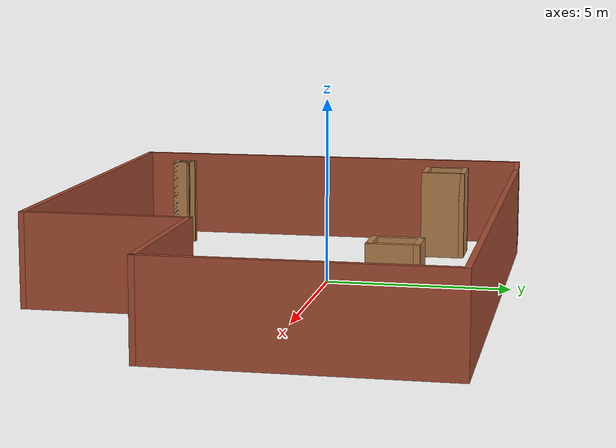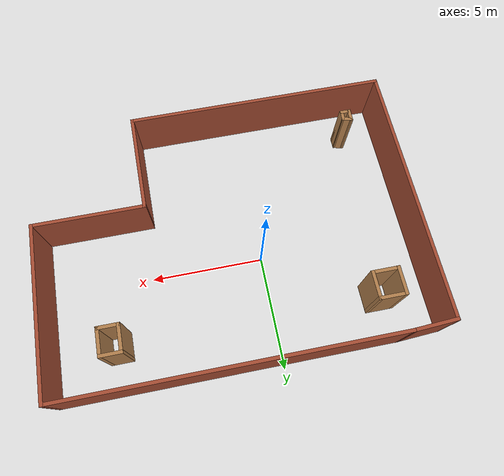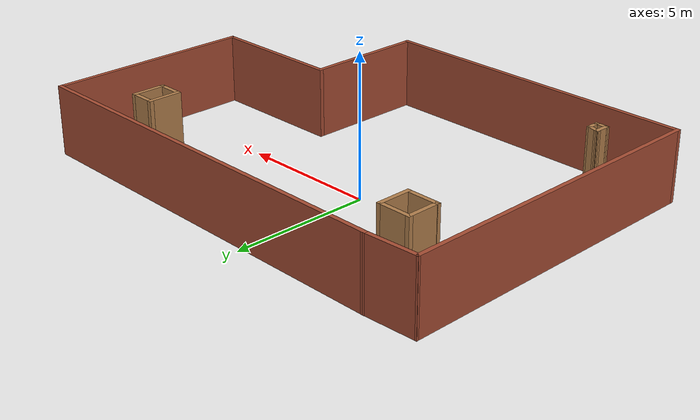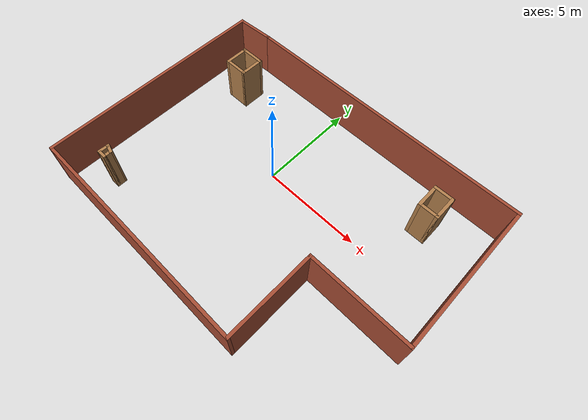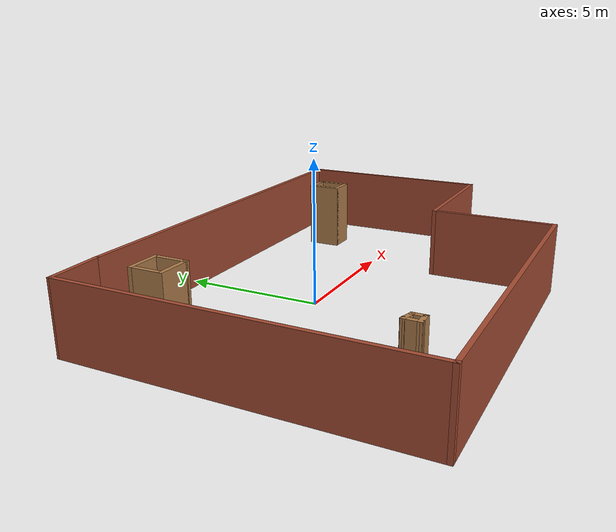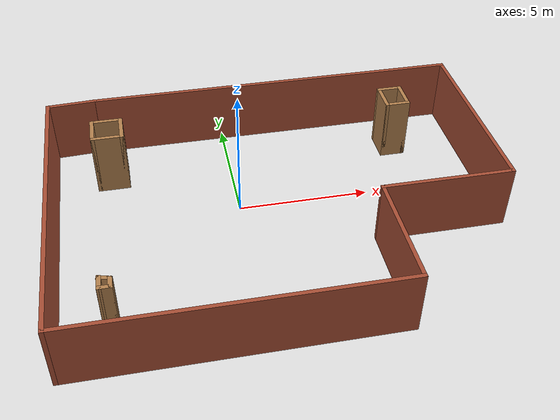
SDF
<?xml version='1.0'?>
<sdf version='1.6'>
  <model name='tutorial_world'>
    <pose frame=''>1.29947 -1.10865 0 0 -0 0</pose>
    <link name='Wall_1'>
      <collision name='Wall_1_Collision'>
        <geometry>
          <box>
            <size>14.75 0.15 2.5</size>
          </box>
        </geometry>
        <pose frame=''>0 0 1.25 0 -0 0</pose>
      </collision>
      <visual name='Wall_1_Visual'>
        <pose frame=''>0 0 1.25 0 -0 0</pose>
        <geometry>
          <box>
            <size>14.75 0.15 2.5</size>
          </box>
        </geometry>
        <material>
          <script>
            <uri>file://media/materials/scripts/gazebo.material</uri>
            <name>Gazebo/Bricks</name>
          </script>
          <ambient>1 1 1 1</ambient>
        </material>
        <meta>
          <layer>0</layer>
        </meta>
      </visual>
      <pose frame=''>0.926969 5.84803 0 0 -0 0</pose>
    </link>
    <link name='Wall_11'>
      <collision name='Wall_11_Collision'>
        <geometry>
          <box>
            <size>0.5 0.15 2.5</size>
          </box>
        </geometry>
        <pose frame=''>0 0 1.25 0 -0 0</pose>
      </collision>
      <visual name='Wall_11_Visual'>
        <pose frame=''>0 0 1.25 0 -0 0</pose>
        <geometry>
          <box>
            <size>0.5 0.15 2.5</size>
          </box>
        </geometry>
        <material>
          <script>
            <uri>file://media/materials/scripts/gazebo.material</uri>
            <name>Gazebo/Wood</name>
          </script>
          <ambient>1 1 1 1</ambient>
        </material>
        <meta>
          <layer>0</layer>
        </meta>
      </visual>
      <pose frame=''>-6.37272 -4.46114 0 0 -0 0</pose>
    </link>
    <link name='Wall_12'>
      <collision name='Wall_12_Collision'>
        <geometry>
          <box>
            <size>0.5 0.15 2.5</size>
          </box>
        </geometry>
        <pose frame=''>0 0 1.25 0 -0 0</pose>
      </collision>
      <visual name='Wall_12_Visual'>
        <pose frame=''>0 0 1.25 0 -0 0</pose>
        <geometry>
          <box>
            <size>0.5 0.15 2.5</size>
          </box>
        </geometry>
        <material>
          <script>
            <uri>file://media/materials/scripts/gazebo.material</uri>
            <name>Gazebo/Wood</name>
          </script>
          <ambient>1 1 1 1</ambient>
        </material>
        <meta>
          <layer>0</layer>
        </meta>
      </visual>
      <pose frame=''>-6.19772 -4.28614 0 0 -0 1.5708</pose>
    </link>
    <link name='Wall_13'>
      <collision name='Wall_13_Collision'>
        <geometry>
          <box>
            <size>0.5 0.15 2.5</size>
          </box>
        </geometry>
        <pose frame=''>0 0 1.25 0 -0 0</pose>
      </collision>
      <visual name='Wall_13_Visual'>
        <pose frame=''>0 0 1.25 0 -0 0</pose>
        <geometry>
          <box>
            <size>0.5 0.15 2.5</size>
          </box>
        </geometry>
        <material>
          <script>
            <uri>file://media/materials/scripts/gazebo.material</uri>
            <name>Gazebo/Wood</name>
          </script>
          <ambient>1 1 1 1</ambient>
        </material>
        <meta>
          <layer>0</layer>
        </meta>
      </visual>
      <pose frame=''>-6.36676 -4.06585 0 0 -0 2.87979</pose>
    </link>
    <link name='Wall_14'>
      <collision name='Wall_14_Collision'>
        <geometry>
          <box>
            <size>0.590748 0.15 2.5</size>
          </box>
        </geometry>
        <pose frame=''>0 0 1.25 0 -0 0</pose>
      </collision>
      <visual name='Wall_14_Visual'>
        <pose frame=''>0 0 1.25 0 -0 0</pose>
        <geometry>
          <box>
            <size>0.590748 0.15 2.5</size>
          </box>
        </geometry>
        <material>
          <script>
            <uri>file://media/materials/scripts/gazebo.material</uri>
            <name>Gazebo/Wood</name>
          </script>
          <ambient>1 1 1 1</ambient>
        </material>
        <meta>
          <layer>0</layer>
        </meta>
      </visual>
      <pose frame=''>-6.54176 -4.24085 0 0 -0 -1.59786</pose>
    </link>
    <link name='Wall_16'>
      <collision name='Wall_16_Collision'>
        <geometry>
          <box>
            <size>1.25 0.15 2.5</size>
          </box>
        </geometry>
        <pose frame=''>0 0 1.25 0 -0 0</pose>
      </collision>
      <visual name='Wall_16_Visual'>
        <pose frame=''>0 0 1.25 0 -0 0</pose>
        <geometry>
          <box>
            <size>1.25 0.15 2.5</size>
          </box>
        </geometry>
        <material>
          <script>
            <uri>file://media/materials/scripts/gazebo.material</uri>
            <name>Gazebo/Wood</name>
          </script>
          <ambient>1 1 1 1</ambient>
        </material>
        <meta>
          <layer>0</layer>
        </meta>
      </visual>
      <pose frame=''>-6.54772 3.79885 0 0 -0 -1.5708</pose>
    </link>
    <link name='Wall_17'>
      <collision name='Wall_17_Collision'>
        <geometry>
          <box>
            <size>1.25 0.15 2.5</size>
          </box>
        </geometry>
        <pose frame=''>0 0 1.25 0 -0 0</pose>
      </collision>
      <visual name='Wall_17_Visual'>
        <pose frame=''>0 0 1.25 0 -0 0</pose>
        <geometry>
          <box>
            <size>1.25 0.15 2.5</size>
          </box>
        </geometry>
        <material>
          <script>
            <uri>file://media/materials/scripts/gazebo.material</uri>
            <name>Gazebo/Wood</name>
          </script>
          <ambient>1 1 1 1</ambient>
        </material>
        <meta>
          <layer>0</layer>
        </meta>
      </visual>
      <pose frame=''>-5.99772 3.24885 0 0 -0 0</pose>
    </link>
    <link name='Wall_18'>
      <collision name='Wall_18_Collision'>
        <geometry>
          <box>
            <size>1.25 0.15 2.5</size>
          </box>
        </geometry>
        <pose frame=''>0 0 1.25 0 -0 0</pose>
      </collision>
      <visual name='Wall_18_Visual'>
        <pose frame=''>0 0 1.25 0 -0 0</pose>
        <geometry>
          <box>
            <size>1.25 0.15 2.5</size>
          </box>
        </geometry>
        <material>
          <script>
            <uri>file://media/materials/scripts/gazebo.material</uri>
            <name>Gazebo/Wood</name>
          </script>
          <ambient>1 1 1 1</ambient>
        </material>
        <meta>
          <layer>0</layer>
        </meta>
      </visual>
      <pose frame=''>-5.44772 3.79885 0 0 -0 1.5708</pose>
    </link>
    <link name='Wall_19'>
      <collision name='Wall_19_Collision'>
        <geometry>
          <box>
            <size>1.25 0.15 2.5</size>
          </box>
        </geometry>
        <pose frame=''>0 0 1.25 0 -0 0</pose>
      </collision>
      <visual name='Wall_19_Visual'>
        <pose frame=''>0 0 1.25 0 -0 0</pose>
        <geometry>
          <box>
            <size>1.25 0.15 2.5</size>
          </box>
        </geometry>
        <material>
          <script>
            <uri>file://media/materials/scripts/gazebo.material</uri>
            <name>Gazebo/Wood</name>
          </script>
          <ambient>1 1 1 1</ambient>
        </material>
        <meta>
          <layer>0</layer>
        </meta>
      </visual>
      <pose frame=''>-5.99772 4.34884 0 0 -0 3.14159</pose>
    </link>
    <link name='Wall_2'>
      <collision name='Wall_2_Collision'>
        <geometry>
          <box>
            <size>7.5 0.15 2.5</size>
          </box>
        </geometry>
        <pose frame=''>0 0 1.25 0 -0 0</pose>
      </collision>
      <visual name='Wall_2_Visual'>
        <pose frame=''>0 0 1.25 0 -0 0</pose>
        <geometry>
          <box>
            <size>7.5 0.15 2.5</size>
          </box>
        </geometry>
        <material>
          <script>
            <uri>file://media/materials/scripts/gazebo.material</uri>
            <name>Gazebo/Bricks</name>
          </script>
          <ambient>1 1 1 1</ambient>
        </material>
        <meta>
          <layer>0</layer>
        </meta>
      </visual>
      <pose frame=''>8.22697 2.17303 0 0 -0 -1.5708</pose>
    </link>
    <link name='Wall_21'>
      <collision name='Wall_21_Collision'>
        <geometry>
          <box>
            <size>1.25 0.15 2.5</size>
          </box>
        </geometry>
        <pose frame=''>0 0 1.25 0 -0 0</pose>
      </collision>
      <visual name='Wall_21_Visual'>
        <pose frame=''>0 0 1.25 0 -0 0</pose>
        <geometry>
          <box>
            <size>1.25 0.15 2.5</size>
          </box>
        </geometry>
        <material>
          <script>
            <uri>file://media/materials/scripts/gazebo.material</uri>
            <name>Gazebo/Wood</name>
          </script>
          <ambient>1 1 1 1</ambient>
        </material>
        <meta>
          <layer>0</layer>
        </meta>
      </visual>
      <pose frame=''>5.05323 3.92094 0 0 -0 -1.5708</pose>
    </link>
    <link name='Wall_22'>
      <collision name='Wall_22_Collision'>
        <geometry>
          <box>
            <size>1 0.15 2.5</size>
          </box>
        </geometry>
        <pose frame=''>0 0 1.25 0 -0 0</pose>
      </collision>
      <visual name='Wall_22_Visual'>
        <pose frame=''>0 0 1.25 0 -0 0</pose>
        <geometry>
          <box>
            <size>1 0.15 2.5</size>
          </box>
        </geometry>
        <material>
          <script>
            <uri>file://media/materials/scripts/gazebo.material</uri>
            <name>Gazebo/Wood</name>
          </script>
          <ambient>1 1 1 1</ambient>
        </material>
        <meta>
          <layer>0</layer>
        </meta>
      </visual>
      <pose frame=''>5.47823 3.37094 0 0 -0 0</pose>
    </link>
    <link name='Wall_23'>
      <collision name='Wall_23_Collision'>
        <geometry>
          <box>
            <size>1.25 0.15 2.5</size>
          </box>
        </geometry>
        <pose frame=''>0 0 1.25 0 -0 0</pose>
      </collision>
      <visual name='Wall_23_Visual'>
        <pose frame=''>0 0 1.25 0 -0 0</pose>
        <geometry>
          <box>
            <size>1.25 0.15 2.5</size>
          </box>
        </geometry>
        <material>
          <script>
            <uri>file://media/materials/scripts/gazebo.material</uri>
            <name>Gazebo/Wood</name>
          </script>
          <ambient>1 1 1 1</ambient>
        </material>
        <meta>
          <layer>0</layer>
        </meta>
      </visual>
      <pose frame=''>5.90323 3.92094 0 0 -0 1.5708</pose>
    </link>
    <link name='Wall_24'>
      <collision name='Wall_24_Collision'>
        <geometry>
          <box>
            <size>1 0.15 2.5</size>
          </box>
        </geometry>
        <pose frame=''>0 0 1.25 0 -0 0</pose>
      </collision>
      <visual name='Wall_24_Visual'>
        <pose frame=''>0 0 1.25 0 -0 0</pose>
        <geometry>
          <box>
            <size>1 0.15 2.5</size>
          </box>
        </geometry>
        <material>
          <script>
            <uri>file://media/materials/scripts/gazebo.material</uri>
            <name>Gazebo/Wood</name>
          </script>
          <ambient>1 1 1 1</ambient>
        </material>
        <meta>
          <layer>0</layer>
        </meta>
      </visual>
      <pose frame=''>5.47823 4.47094 0 0 -0 3.14159</pose>
    </link>
    <link name='Wall_4'>
      <collision name='Wall_4_Collision'>
        <geometry>
          <box>
            <size>5 0.15 2.5</size>
          </box>
        </geometry>
        <pose frame=''>0 0 1.25 0 -0 0</pose>
      </collision>
      <visual name='Wall_4_Visual'>
        <pose frame=''>0 0 1.25 0 -0 0</pose>
        <geometry>
          <box>
            <size>5 0.15 2.5</size>
          </box>
        </geometry>
        <material>
          <script>
            <uri>file://media/materials/scripts/gazebo.material</uri>
            <name>Gazebo/Bricks</name>
          </script>
          <ambient>1 1 1 1</ambient>
        </material>
        <meta>
          <layer>0</layer>
        </meta>
      </visual>
      <pose frame=''>5.80197 -1.50197 0 0 -0 3.14159</pose>
    </link>
    <link name='Wall_5'>
      <collision name='Wall_5_Collision'>
        <geometry>
          <box>
            <size>4.5 0.15 2.5</size>
          </box>
        </geometry>
        <pose frame=''>0 0 1.25 0 -0 0</pose>
      </collision>
      <visual name='Wall_5_Visual'>
        <pose frame=''>0 0 1.25 0 -0 0</pose>
        <geometry>
          <box>
            <size>4.5 0.15 2.5</size>
          </box>
        </geometry>
        <material>
          <script>
            <uri>file://media/materials/scripts/gazebo.material</uri>
            <name>Gazebo/Bricks</name>
          </script>
          <ambient>1 1 1 1</ambient>
        </material>
        <meta>
          <layer>0</layer>
        </meta>
      </visual>
      <pose frame=''>3.37697 -3.67697 0 0 -0 -1.5708</pose>
    </link>
    <link name='Wall_6'>
      <collision name='Wall_6_Collision'>
        <geometry>
          <box>
            <size>11.75 0.15 2.5</size>
          </box>
        </geometry>
        <pose frame=''>0 0 1.25 0 -0 0</pose>
      </collision>
      <visual name='Wall_6_Visual'>
        <pose frame=''>0 0 1.25 0 -0 0</pose>
        <geometry>
          <box>
            <size>11.75 0.15 2.5</size>
          </box>
        </geometry>
        <material>
          <script>
            <uri>file://media/materials/scripts/gazebo.material</uri>
            <name>Gazebo/Bricks</name>
          </script>
          <ambient>1 1 1 1</ambient>
        </material>
        <meta>
          <layer>0</layer>
        </meta>
      </visual>
      <pose frame=''>-2.42303 -5.85197 0 0 -0 3.14159</pose>
    </link>
    <link name='Wall_8'>
      <collision name='Wall_8_Collision'>
        <geometry>
          <box>
            <size>11.75 0.15 2.5</size>
          </box>
        </geometry>
        <pose frame=''>0 0 1.25 0 -0 0</pose>
      </collision>
      <visual name='Wall_8_Visual'>
        <pose frame=''>0 0 1.25 0 -0 0</pose>
        <geometry>
          <box>
            <size>11.75 0.15 2.5</size>
          </box>
        </geometry>
        <material>
          <script>
            <uri>file://media/materials/scripts/gazebo.material</uri>
            <name>Gazebo/Bricks</name>
          </script>
          <ambient>1 1 1 1</ambient>
        </material>
        <meta>
          <layer>0</layer>
        </meta>
      </visual>
      <pose frame=''>-8.22303 -0.051969 0 0 -0 1.5708</pose>
    </link>
    <link name='Wall_9'>
      <collision name='Wall_9_Collision'>
        <geometry>
          <box>
            <size>2.0027 0.15 2.5</size>
          </box>
        </geometry>
        <pose frame=''>0 0 1.25 0 -0 0</pose>
      </collision>
      <visual name='Wall_9_Visual'>
        <pose frame=''>0 0 1.25 0 -0 0</pose>
        <geometry>
          <box>
            <size>2.0027 0.15 2.5</size>
          </box>
        </geometry>
        <material>
          <script>
            <uri>file://media/materials/scripts/gazebo.material</uri>
            <name>Gazebo/Bricks</name>
          </script>
          <ambient>1 1 1 1</ambient>
        </material>
        <meta>
          <layer>0</layer>
        </meta>
      </visual>
      <pose frame=''>-7.29803 5.79803 0 0 -0 0.054001</pose>
    </link>
    <static>1</static>
  </model>
</sdf>
